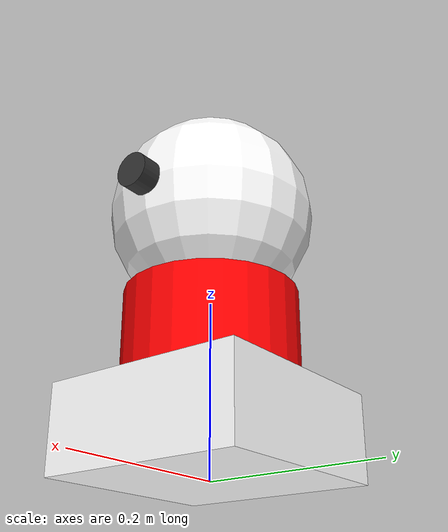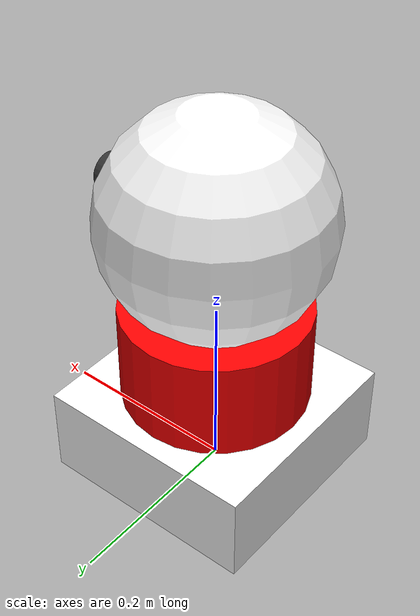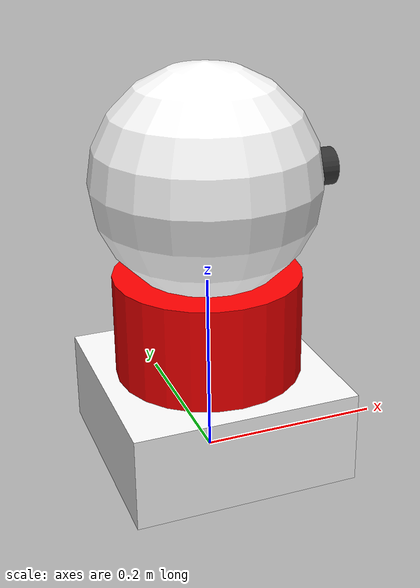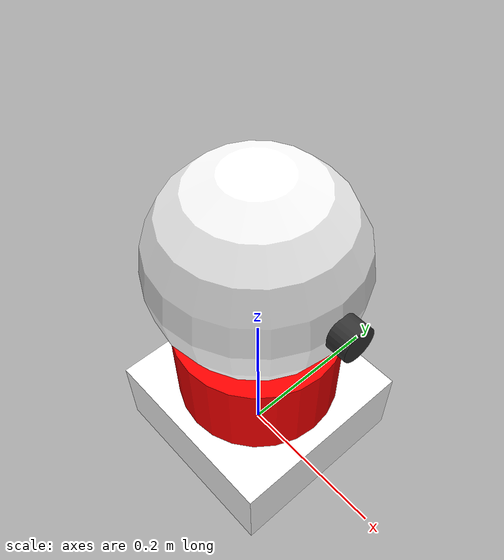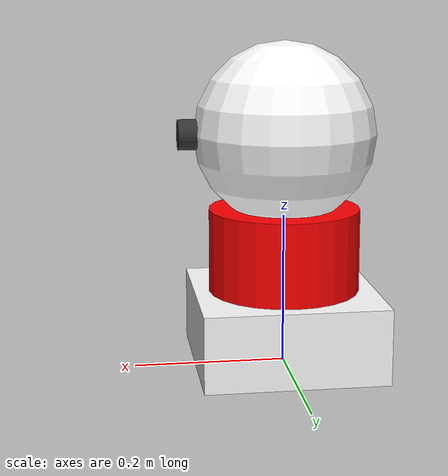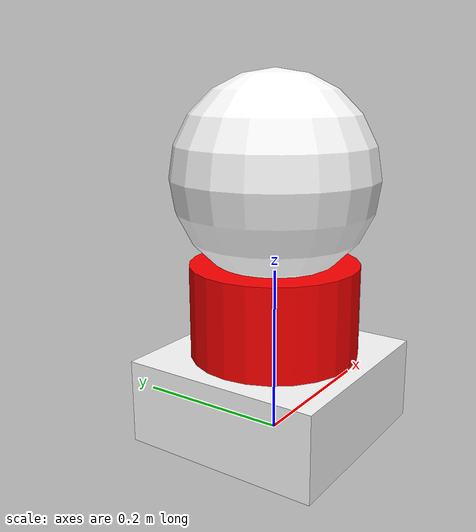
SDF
<?xml version="1.0" ?>
<sdf version="1.10">
  <model name="ptz_cam">
    <self_collide>false</self_collide>
    <static>false</static>

    <link name="ptz_base_link">
      <pose>0 0 0.05 0 0 0</pose>
      <inertial>
        <mass>1.0</mass>
        <inertia>
          <ixx>0.00563</ixx>
          <ixy>0</ixy>
          <ixz>0</ixz>
          <iyy>0.00563</iyy>
          <iyz>0</iyz>
          <izz>0.0096</izz>
        </inertia>
      </inertial>
      <visual name="base_visual">
        <geometry>
          <box>
            <size>0.24 0.24 0.1</size>
          </box>
        </geometry>
        <material>
          <ambient>1 1 1 1</ambient>
          <diffuse>1 1 1 1</diffuse>
          <specular>0.5 0.5 0.5 1</specular>
        </material>
      </visual>
      <collision name="base_collision">
        <geometry>
          <box>
            <size>0.24 0.24 0.1</size>
          </box>
        </geometry>
      </collision>
    </link>

    <link name="ptz_yaw_link">
      <pose>0 0 0.13 0 0 0</pose>
      <inertial>
        <mass>0.3</mass>
        <inertia>
          <ixx>0.00139</ixx>
          <ixy>0</ixy>
          <ixz>0</ixz>
          <iyy>0.00139</iyy>
          <iyz>0</iyz>
          <izz>0.0015</izz>
        </inertia>
      </inertial>
      <visual name="yaw_visual">
        <geometry>
          <cylinder>
            <radius>0.1</radius>
            <length>0.16</length>
          </cylinder>
        </geometry>
        <material>
          <ambient>1 0 0 1</ambient>
          <diffuse>1 0 0 1</diffuse>
          <specular>0.5 0.5 0.5 1</specular>
        </material>
      </visual>
      <collision name="yaw_collision">
        <geometry>
          <cylinder>
            <radius>0.1</radius>
            <length>0.16</length>
          </cylinder>
        </geometry>
      </collision>
    </link>

    <joint name="ptz_yaw_joint" type="revolute">
      <parent>ptz_base_link</parent>
      <child>ptz_yaw_link</child>
      <axis>
        <xyz>0 0 1</xyz>
        <limit>
          <lower>-1e16</lower>
          <upper>1e16</upper>
          <effort>50</effort>
          <velocity>-1</velocity>
        </limit>
        <dynamics>
          <damping>0.05</damping>
        </dynamics>
      </axis>
      <physics>
        <ode>
          <implicit_spring_damper>1</implicit_spring_damper>
          <limit>
            <cfm>0.1</cfm>
            <erp>0.2</erp>
          </limit>
        </ode>
      </physics>
    </joint>

    <link name="ptz_pitch_link">
      <pose>0 0 0.31 0 0 0</pose>
      <inertial>
        <mass>0.5</mass>
        <inertia>
          <ixx>0.00288</ixx>
          <ixy>0</ixy>
          <ixz>0</ixz>
          <iyy>0.00288</iyy>
          <iyz>0</iyz>
          <izz>0.00288</izz>
        </inertia>
      </inertial>
      <visual name="pitch_visual">
        <geometry>
          <sphere>
            <radius>0.12</radius>
          </sphere>
        </geometry>
        <material>
          <ambient>1 1 1 1</ambient>
          <diffuse>1 1 1 1</diffuse>
          <specular>0.5 0.5 0.5 1</specular>
        </material>
      </visual>
      <collision name="pitch_collision">
        <geometry>
          <sphere>
            <radius>0.12</radius>
          </sphere>
        </geometry>
      </collision>
    </link>

    <joint name="ptz_pitch_joint" type="revolute">
      <parent>ptz_yaw_link</parent>
      <child>ptz_pitch_link</child>
      <axis>
        <xyz>0 1 0</xyz>
        <limit>
          <lower>-1.5708</lower>
          <upper>0.436332</upper>
          <effort>50</effort>
          <velocity>1.0</velocity>
        </limit>
        <dynamics>
          <damping>0.1</damping>
        </dynamics>
      </axis>
      <physics>
        <ode>
          <implicit_spring_damper>1</implicit_spring_damper>
          <limit>
            <cfm>0.1</cfm>
            <erp>0.2</erp>
          </limit>
        </ode>
      </physics>
    </joint>

    <link name="ptz_camera_link">
      <pose>0.12 0 0.31 0 1.5708 0</pose>
      <inertial>
        <mass>0.01</mass>
        <inertia>
          <ixx>2.3333e-06</ixx>
          <ixy>0</ixy>
          <ixz>0</ixz>
          <iyy>2.3333e-06</iyy>
          <iyz>0</iyz>
          <izz>2.0e-06</izz>
        </inertia>
      </inertial>
      <visual name="camera_visual">
        <geometry>
          <cylinder>
            <radius>0.02</radius>
            <length>0.04</length>
          </cylinder>
        </geometry>
        <material>
          <ambient>0.2 0.2 0.2 1</ambient>
          <diffuse>0.2 0.2 0.2 1</diffuse>
          <specular>0.5 0.5 0.5 1</specular>
        </material>
      </visual>
      <collision name="mount_collision">
        <geometry>
          <cylinder>
            <radius>0.02</radius>
            <length>0.04</length>
          </cylinder>
        </geometry>
      </collision>

      <sensor name="camera_imu" type="imu">
        <always_on>1</always_on>
        <update_rate>250</update_rate>
        <pose>0.12 0 0.31 0 1.5708 0</pose>
        <imu>
          <angular_velocity>
            <x>
              <noise type="gaussian">
                <mean>0</mean>
                <stddev>0.00018665</stddev>
                <dynamic_bias_stddev>3.8785e-05</dynamic_bias_stddev>
                <dynamic_bias_correlation_time>1000</dynamic_bias_correlation_time>
              </noise>
            </x>
            <y>
              <noise type="gaussian">
                <mean>0</mean>
                <stddev>0.00018665</stddev>
                <dynamic_bias_stddev>3.8785e-05</dynamic_bias_stddev>
                <dynamic_bias_correlation_time>1000</dynamic_bias_correlation_time>
              </noise>
            </y>
            <z>
              <noise type="gaussian">
                <mean>0</mean>
                <stddev>0.00018665</stddev>
                <dynamic_bias_stddev>3.8785e-05</dynamic_bias_stddev>
                <dynamic_bias_correlation_time>1000</dynamic_bias_correlation_time>
              </noise>
            </z>
          </angular_velocity>
          <linear_acceleration>
            <x>
              <noise type="gaussian">
                <mean>0</mean>
                <stddev>0.00186</stddev>
                <dynamic_bias_stddev>0.006</dynamic_bias_stddev>
                <dynamic_bias_correlation_time>300</dynamic_bias_correlation_time>
              </noise>
            </x>
            <y>
              <noise type="gaussian">
                <mean>0</mean>
                <stddev>0.00186</stddev>
                <dynamic_bias_stddev>0.006</dynamic_bias_stddev>
                <dynamic_bias_correlation_time>300</dynamic_bias_correlation_time>
              </noise>
            </y>
            <z>
              <noise type="gaussian">
                <mean>0</mean>
                <stddev>0.00186</stddev>
                <dynamic_bias_stddev>0.006</dynamic_bias_stddev>
                <dynamic_bias_correlation_time>300</dynamic_bias_correlation_time>
              </noise>
            </z>
          </linear_acceleration>
        </imu>
        <topic>ptz_cam/camera_imu</topic>
      </sensor>

      <sensor name="camera" type="camera">
        <pose>0.14 0 0.31 0 -1.5708 0</pose>
        <camera>
          <horizontal_fov>1.74</horizontal_fov>
          <image>
            <width>1280</width>
            <height>720</height>
            <format>R8G8B8</format>
          </image>
          <clip>
            <near>0.1</near>
            <far>1000</far>
          </clip>
        </camera>
        <always_on>1</always_on>
        <update_rate>30</update_rate>
        <visualize>true</visualize>
        <topic>ptz_cam/camera</topic>
      </sensor>
    </link>

    <joint name="mount_joint" type="fixed">
      <parent>ptz_pitch_link</parent>
      <child>ptz_camera_link</child>
    </joint>

     <!-- Plugins for joint control -->
    <plugin filename="gz-sim-joint-position-controller-system"
            name="gz::sim::systems::JointPositionController">
      <joint_name>ptz_yaw_joint</joint_name>
      <sub_topic>command/ptz_yaw</sub_topic>
      <p_gain>0.3</p_gain>
      <i_gain>0.012</i_gain>
      <d_gain>0.015</d_gain>
      <i_max>0</i_max>
      <i_min>0</i_min>
      <cmd_max>0.3</cmd_max>
      <cmd_min>-0.3</cmd_min>
    </plugin>

    <plugin filename="gz-sim-joint-position-controller-system"
            name="gz::sim::systems::JointPositionController">
      <joint_name>ptz_pitch_joint</joint_name>
      <sub_topic>command/ptz_pitch</sub_topic>
      <p_gain>0.8</p_gain>
      <i_gain>0.012</i_gain>
      <d_gain>0.015</d_gain>
      <i_max>0</i_max>
      <i_min>0</i_min>
      <cmd_max>1</cmd_max>
      <cmd_min>-1</cmd_min>
    </plugin>

  </model>
</sdf>
